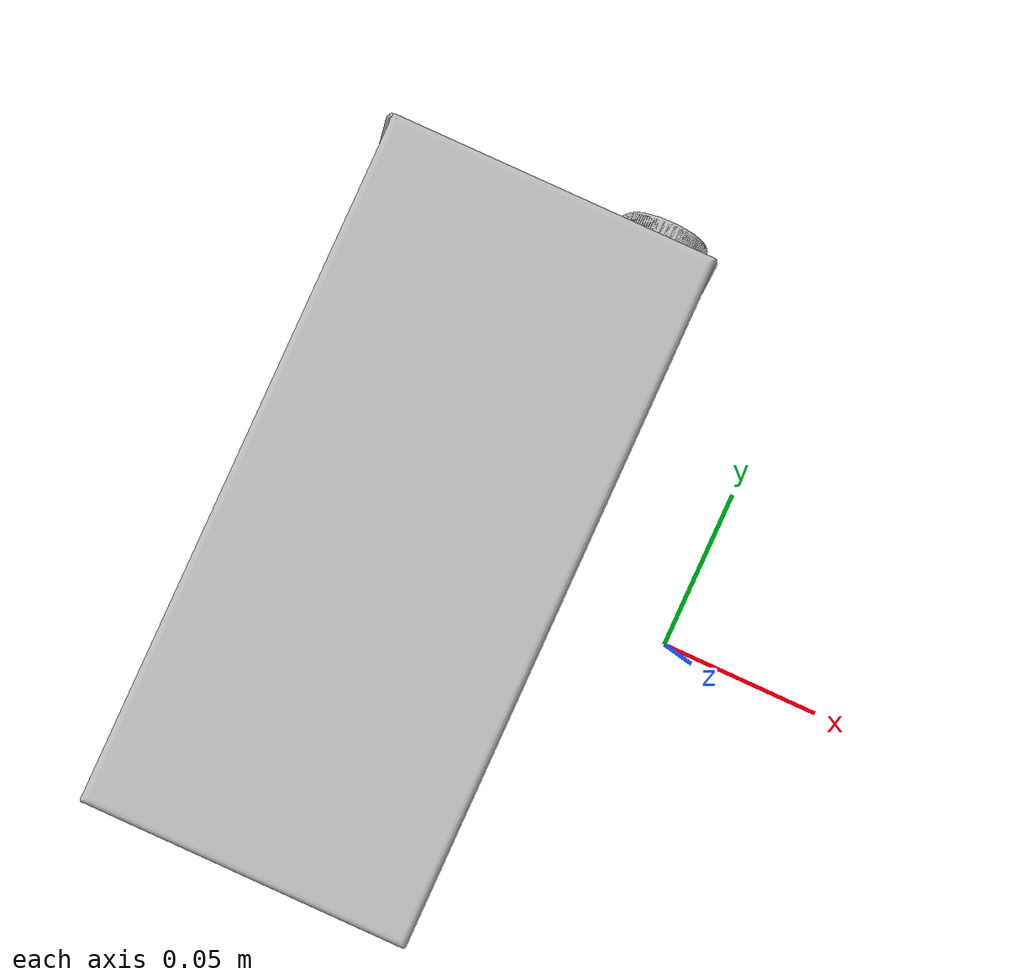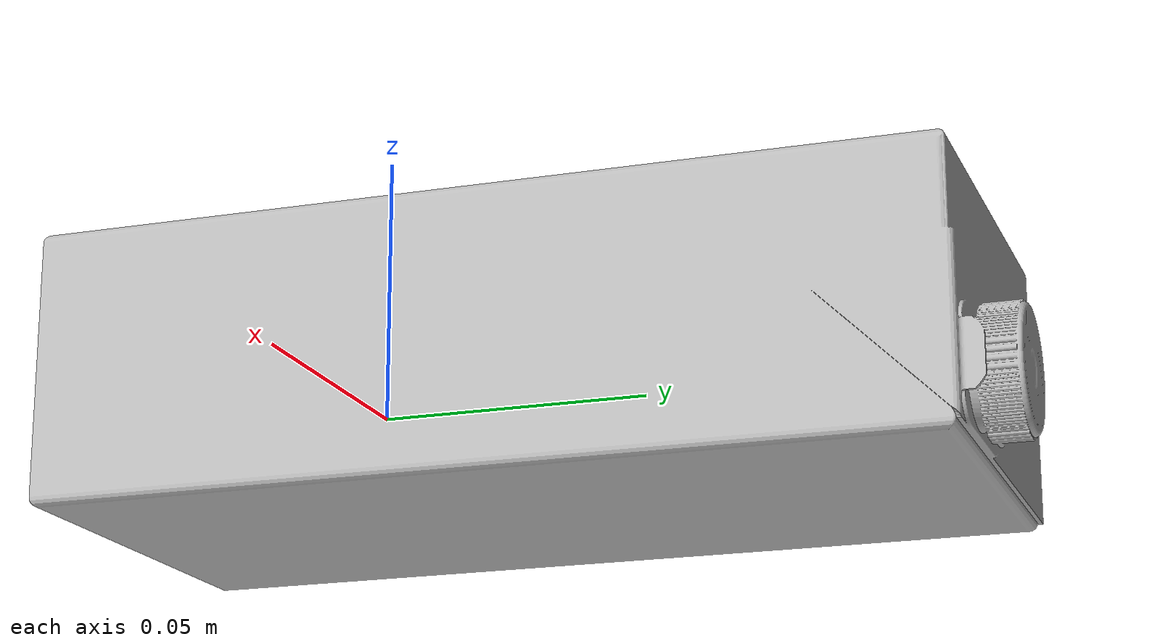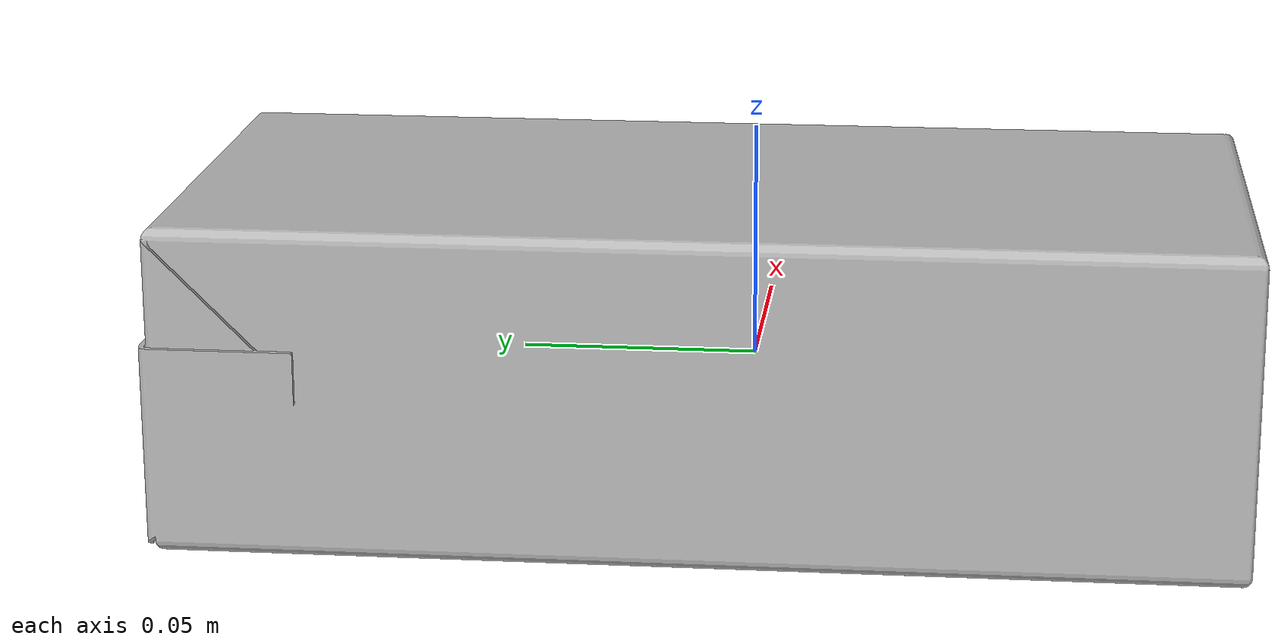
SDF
<?xml version="1.0" ?>
<sdf version="1.5">
  <model name="1Liter DonSimon">
    <static>true</static>
    <link name="link">
    <gravity>true</gravity>
      <inertial>
        <pose>0.0 0.0 0.0 0 0 0</pose>
        <mass>4.000</mass>
        <inertia>
          <ixx>0.0001</ixx>
          <ixy>0</ixy>
          <ixz>0</ixz>
          <iyy>0.0001</iyy>
          <iyz>0</iyz>
          <izz>0.0001</izz>
        </inertia>
      </inertial>
      <collision name="collision">
        <pose>0 0 0 0 0 0</pose>
        <geometry>
          <mesh>
            <uri>model://textured_models/1Liter_DonSimon/meshes/1Liter_Carton.dae</uri>
          </mesh>
        </geometry>
        <surface>
          <friction>
            <ode>
              <mu>1.0</mu>
              <mu2>1.0</mu2>
            </ode>
          </friction>
          <contact>
            <ode>
              <kp>10000000.0</kp>
              <kd>1.0</kd>
              <min_depth>0.001</min_depth>
              <max_vel>0.1</max_vel>
            </ode>
          </contact>
        </surface>
      </collision>
      <visual name="visual">
        <pose>0 0 0 0 0 0</pose>
        <geometry>
          <mesh>
            <uri>model://textured_models/1Liter_DonSimon/meshes/1Liter_Carton.dae</uri>
          </mesh>
        </geometry>
      </visual>
    </link>
  </model>
</sdf>
